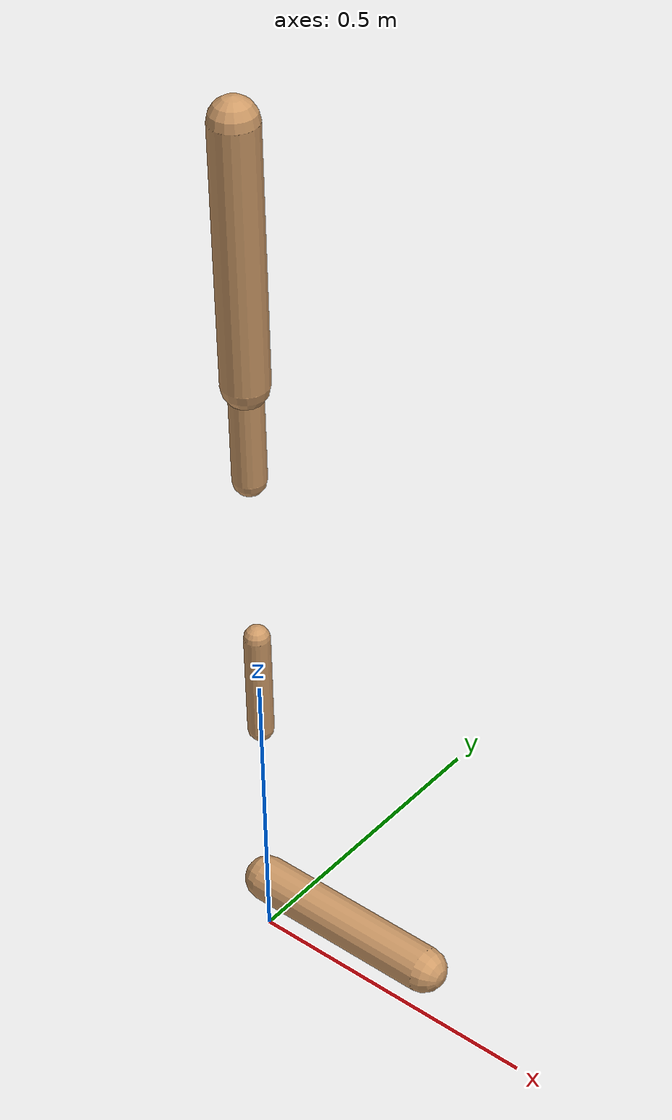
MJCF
<mujoco model="walker2d">
  <compiler angle="degree" coordinate="global" inertiafromgeom="true" />
  <default>
    <joint armature="0.01" damping=".1" limited="true" />
    <geom conaffinity="0" condim="3" contype="1" density="1000" friction="0.8 .1 .1" rgba="0.8 0.6 .4 1" />
  </default>
  <option integrator="RK4" timestep="0.002" />
  <worldbody>

    <body name="torso" pos="0 0 -0.6132190067730514">
      <joint armature="0" axis="1 0 0" damping="0" limited="false" name="ignorex" pos="0 0 0" stiffness="0" type="slide" />
      <joint armature="0" axis="0 0 1" damping="0" limited="false" name="ignorez" pos="0 0 0" ref="1.25" stiffness="0" type="slide" />
      <joint armature="0" axis="0 1 0" damping="0" limited="false" name="ignorey" pos="0 0 0" stiffness="0" type="hinge" />
      <geom fromto="0 0 1.45 0 0 1.05" name="torso_geom" size="0.03604003341399848" type="capsule" />
      <body name="thigh">
        <joint axis="0 -1 0" name="thigh_joint" pos="0 0 1.05" range="-150 0" type="hinge" />
        <geom fromto="0.0 0.0 1.05 0.0 0.0 0.8904721611030244" name="thigh_geom" size="0.025702754318126516" type="capsule" />
        <body name="leg" pos="0.0 0.0 0.29047216110302443">
          <joint axis="0 -1 0" name="leg_joint" pos="0 0 0.6" range="-150 0" type="hinge" />
          <geom fromto="0.0 0.0 0.6 0.0 0.0 0.42274684567002707" name="leg_geom" size="0.020562203454501212" type="capsule" />
          <body name="foot" pos="0.0 0.0 0.3227468456700271">
            <joint axis="0 -1 0" name="foot_joint" pos="0 0 0.1" range="-45 45" type="hinge" />
            <geom fromto="-0.0 0.0 0.10000000000000002 0.3178869492954429 0.0 0.10000000000000002" name="foot_geom" size="0.036585907260481276" type="capsule" />
          </body>
        </body>
      </body>

      <body name="thigh_left">
        <joint axis="0 -1 0" name="thigh_left_joint" pos="0 0 1.05" range="-150 0" type="hinge" />
        <geom fromto="0.0 0.0 1.05 0.0 0.0 0.8904721611030244" name="thigh_left_geom" rgba=".7 .3 .6 1" size="0.025702754318126516" type="capsule" />
        <body name="leg_left" pos="0.0 0.0 0.29047216110302443">
          <joint axis="0 -1 0" name="leg_left_joint" pos="0 0 0.6" range="-150 0" type="hinge" />
          <geom fromto="0.0 0.0 0.6 0.0 0.0 0.42274684567002707" name="leg_left_geom" rgba=".7 .3 .6 1" size="0.020562203454501212" type="capsule" />
          <body name="foot_left" pos="0.0 0.0 0.3227468456700271">
            <joint axis="0 -1 0" name="foot_left_joint" pos="0 0 0.1" range="-45 45" type="hinge" />
            <geom fromto="-0.0 0.0 0.10000000000000002 0.3178869492954429 0.0 0.10000000000000002" name="foot_left_geom" rgba=".7 .3 .6 1" size="0.036585907260481276" type="capsule" />
          </body>
        </body>
      </body>
    </body>
  </worldbody>
  <actuator>

    <motor ctrllimited="true" ctrlrange="-1.0 1.0" gear="100" joint="thigh_joint" />
    <motor ctrllimited="true" ctrlrange="-1.0 1.0" gear="100" joint="leg_joint" />
    <motor ctrllimited="true" ctrlrange="-1.0 1.0" gear="100" joint="foot_joint" />
    <motor ctrllimited="true" ctrlrange="-1.0 1.0" gear="100" joint="thigh_left_joint" />
    <motor ctrllimited="true" ctrlrange="-1.0 1.0" gear="100" joint="leg_left_joint" />
    <motor ctrllimited="true" ctrlrange="-1.0 1.0" gear="100" joint="foot_left_joint" />

  </actuator>
</mujoco>
